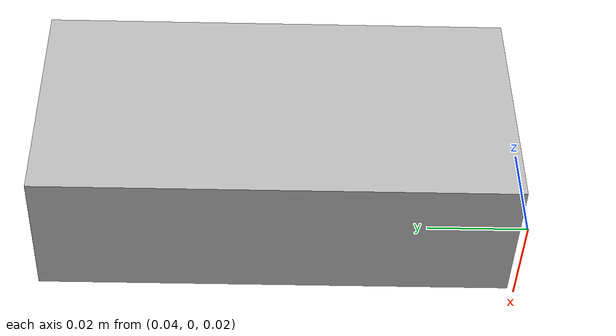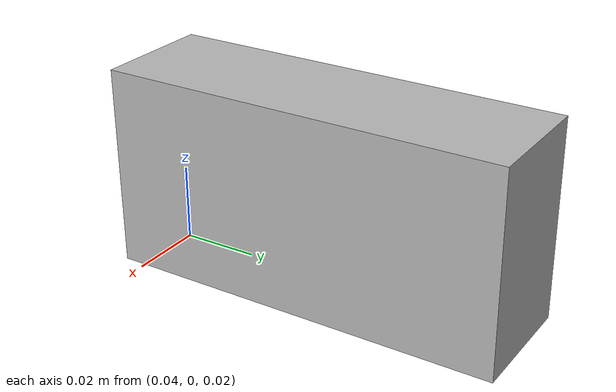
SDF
<?xml version="1.0" ?>
<sdf version="1.5">
  <model name="stereocamera">
    <link name="link">
      <pose>0.05 0.05 0.05 0 0 0</pose>
      <inertial>
        <mass>0.1</mass>
        <inertia>
          <ixx>0.000166667</ixx>
          <iyy>0.000166667</iyy>
          <izz>0.000166667</izz>
        </inertia>
      </inertial>
      <collision name="collision">
        <geometry>
          <box>
            <size>0.03 0.1 0.05</size>
          </box>
        </geometry>
      </collision>
      <visual name="visual">
        <geometry>
          <box>
            <size>0.03 0.1 0.05</size>
          </box>
        </geometry>
      </visual>
      <sensor name="camera" type="multicamera">
        <always_on>1</always_on>
        <update_rate>30</update_rate>
        <visualize>false</visualize>
        <camera name="left">
          <pose>0 0.2 0 0 0 0</pose>
          <horizontal_fov>1.919</horizontal_fov>
          <image>
            <width>1280</width>
            <height>720</height>
          </image>
          <clip>
            <near>0.5</near>
            <far>20</far>
          </clip>
          <noise>
           <!-- Use gaussian noise -->
           <type>gaussian</type>
           <mean>0.0</mean>
           <stddev>0.02</stddev>
          </noise>
        </camera>
        <camera name="right">
          <pose>0 -0.2 0 0 0 0</pose>
          <horizontal_fov>1.919</horizontal_fov>
          <image>
            <width>1280</width>
            <height>720</height>
          </image>
          <clip>
            <near>0.5</near>
            <far>20</far>
          </clip>
          <noise>
           <!-- Use gaussian noise -->
           <type>gaussian</type>
           <mean>0.0</mean>
           <stddev>0.02</stddev>
         </noise>
        </camera>
      </sensor>
    </link>
  </model>
</sdf>
